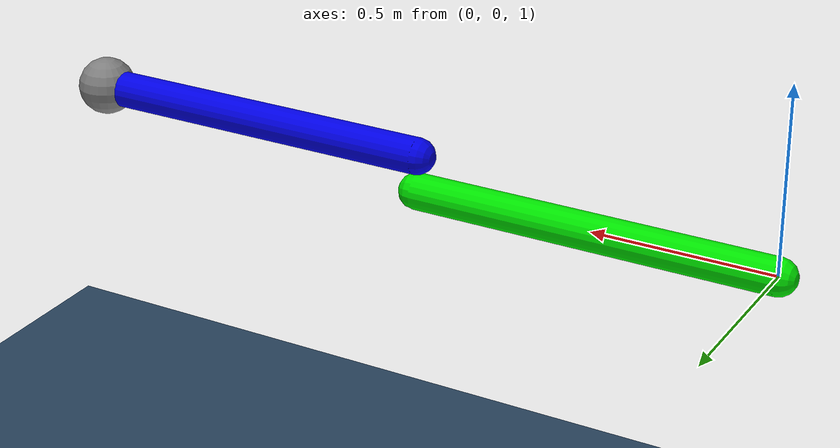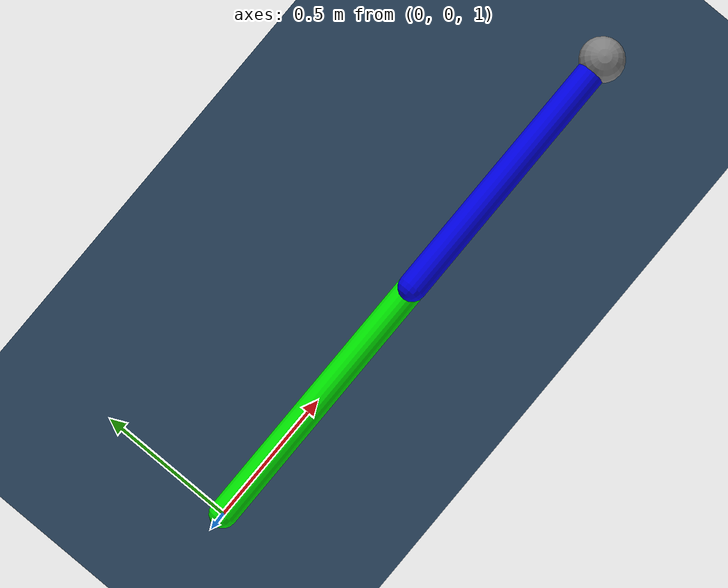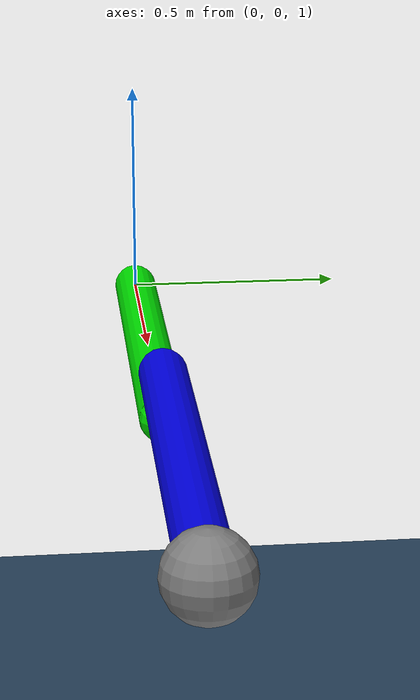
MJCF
<mujoco>
    <option gravity="0 0 -9.81 " />
    <asset>
        <material name="green" rgba="0 0.9 0 1" />
        <material name="blue" rgba="0 0 0.9 1" />
        <texture name="grid" type="2d" builtin="checker" width="512" height="512" rgb1=".1 .2 .3" rgb2=".2 .3 .4" />
        <material name="grid" texture="grid" texrepeat="1 1" texuniform="true" reflectance=".2" />
    </asset>

    <worldbody>
        <light diffuse="0.3 0.3 0.3" pos="1 0 3" dir="-1 0 -3" />
        <geom type="plane" size="10 10 0.1"  material="grid" />

        <body pos="0 0 1" euler="0 0 0">
            <joint name="joint1" type="hinge" axis="0 0 1" pos="0 0 0" />
            <geom type="capsule" size="0.05 0.5" pos="0.5 0 0" euler="0 90 0" mass="1" material="green" />

            <body pos="1 0 0.1" euler="0 0 0">
                <joint name="joint2" type="hinge" axis="0 0 1" pos="0 0 0" />
                <geom type="capsule" size="0.05 0.5" pos="0.5 0 0" euler="0 90 0" mass="1" material="blue" />
                <site name="ee" pos="1 0 0" size="0.08" />
            </body>
        </body>

    </worldbody>

    <actuator>
        <position name="pos_ctrl1" joint="joint1" kp="100" />
        <velocity name="vel_ctrl1" joint="joint1" kv="10" />
        <motor name="trq_ctrl1" joint="joint1" ctrllimited="true" ctrlrange="-100 100" />

        <position name="pos_ctrl2" joint="joint2" kp="100" />
        <velocity name="vel_ctrl2" joint="joint2" kv="10" />
        <motor name="trq_ctrl2" joint="joint2" ctrllimited="true" ctrlrange="-100 100" />
    </actuator>

    <sensor>
        <jointpos name="pos_sensor1" joint="joint1" />
        <jointvel name="vel_sensor1" joint="joint1" />
        <jointpos name="pos_sensor2" joint="joint2" />
        <jointvel name="vel_sensor2" joint="joint2" />
        <framepos objtype="site" objname="ee" />
	    <framelinvel objtype="site" objname="ee" />
    </sensor>

</mujoco>
